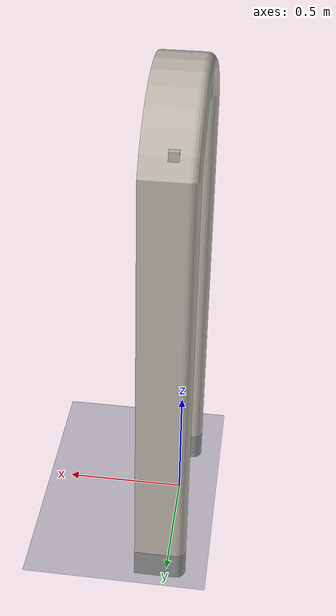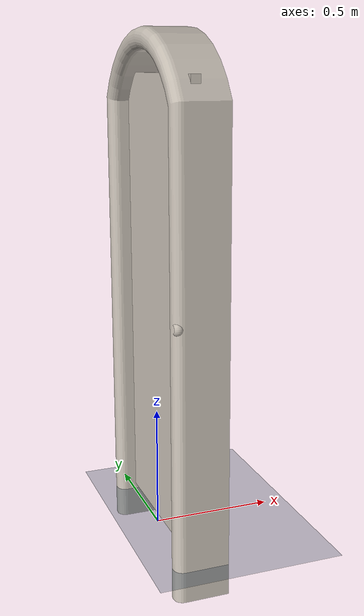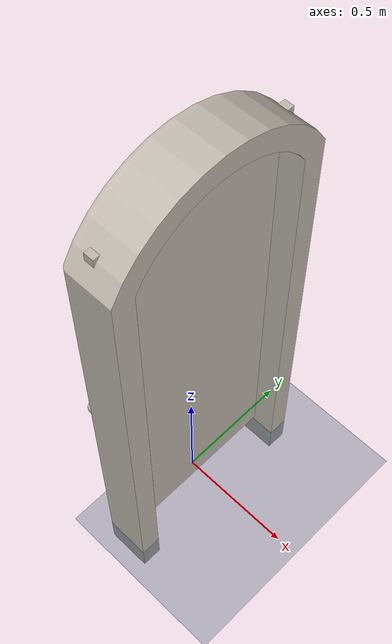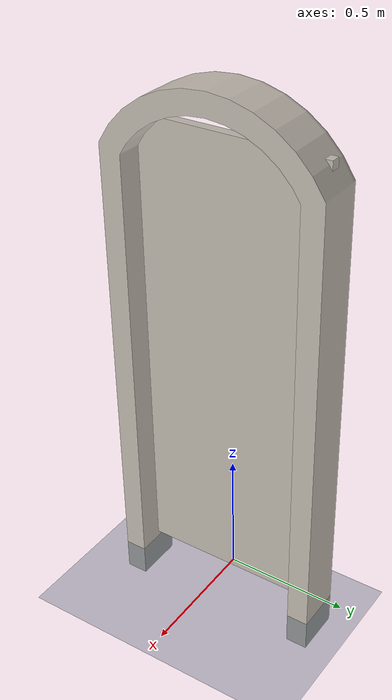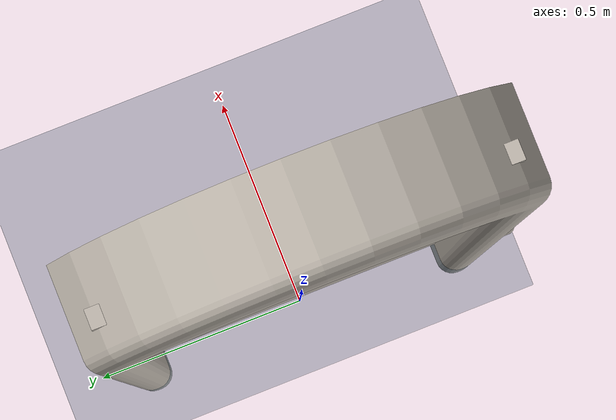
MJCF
<mujoco model="fridge">
  <compiler angle="radian" meshdir="texture_stl/"/>

  <visual>
    <headlight diffuse="0.6 0.6 0.6" ambient="0.3 0.3 0.3" specular="0 0 0"/>
    <rgba haze="0.15 0.25 0.35 1"/>
    <global azimuth="-20" elevation="-20" ellipsoidinertia="true"/>
  </visual>

  <asset>
    <texture type="skybox" builtin="gradient" rgb1="0.3 0.5 0.7" rgb2="0 0 0" width="512" height="3072"/>
    <texture type="2d" name="groundplane" builtin="checker" mark="edge" rgb1="0.2 0.3 0.4" rgb2="0.1 0.2 0.3"
      markrgb="0.8 0.8 0.8" width="300" height="300"/>
    <texture name="door_texture" type="cube" file="texture_stl/texture_0.png"/>
    <texture name="handle_texture" type="2d" file="texture_stl/texture_0.png"/>
    <material name="door_material" texture="door_texture"/>
    <material name="handle_material" texture="handle_texture"/>
    <material name="groundplane" texture="groundplane" texuniform="true" texrepeat="5 5" reflectance="0.2"/>

    <mesh name="frame" file="frame.stl" scale="0.8632881649119379 0.8632881649119379 0.8632881649119379"/>
    <mesh name="board" file="board.stl" scale="0.8632881649119379 0.8632881649119379 0.86328816491193794"/>
    <mesh name="9962026" file="9962026.stl" scale="0.7375794533982215 0.7375794533982215 0.7375794533982215"/>
  </asset>

  <worldbody>
    <light pos="0 0 1.5" dir="0 0 -1" directional="true"/>
    <geom name="floor" size="0 0 0.05" type="plane" material="groundplane"/>
    <body name="door" euler="0 1.57 0" pos="0 0 0.95">
      <geom name="frame" pos="0 0 0" quat="0.5 0.5 -0.5 -0.5" type="mesh" mesh="frame" material="door_material" conaffinity="0" contype="0"/>
      <body name="link_1" pos="0 0.4815588565752399 0" quat="0.5 0.5 -0.5 -0.5">
        <inertial pos="0 0 0" mass="10.0" diaginertia="5.0 5.0 5.0"/>
        <joint name="joint_1" pos="0 0 0" axis="0 0 -1" range="0 1.50796"/>
        <geom name="board" pos="0.4815588565752399 0 0" quat="1 0 0 0" type="mesh" mesh="board" material="door_material"/>
        <body name="link_2" pos="0.8838796815488454 -0.02 0.017780032004302074">
          <joint name="joint_2" pos="0 0 0" axis="0 1 0" range="-1.50796 1.50796" stiffness="2.0" damping="0.1"/>
          <geom name="handle" type="mesh" mesh="9962026" material="handle_material"/>
        </body>
      </body>
    </body>
  </worldbody>
</mujoco>
